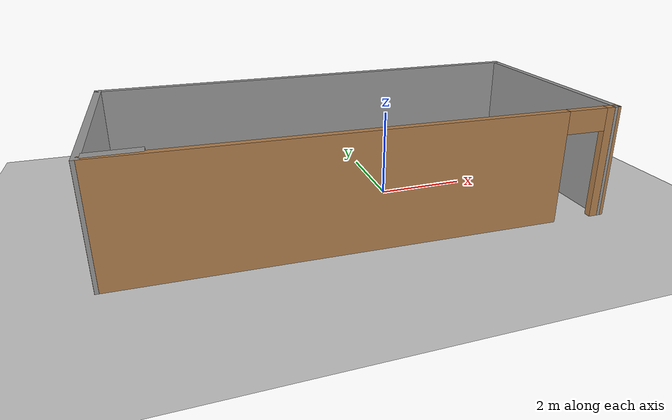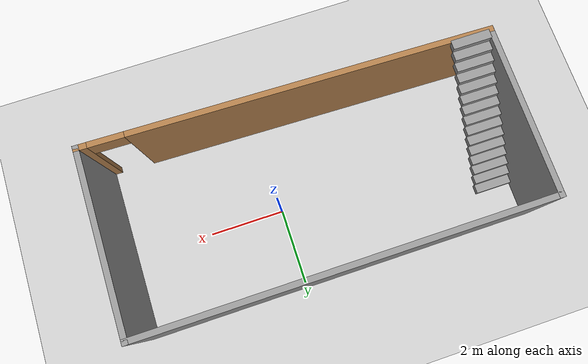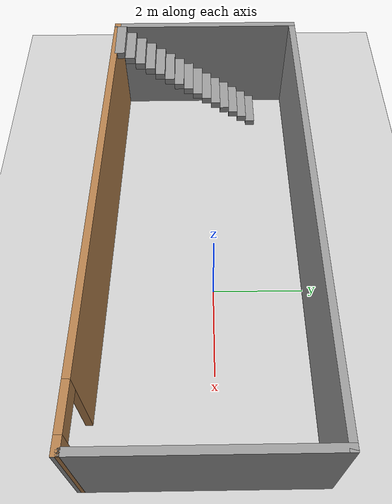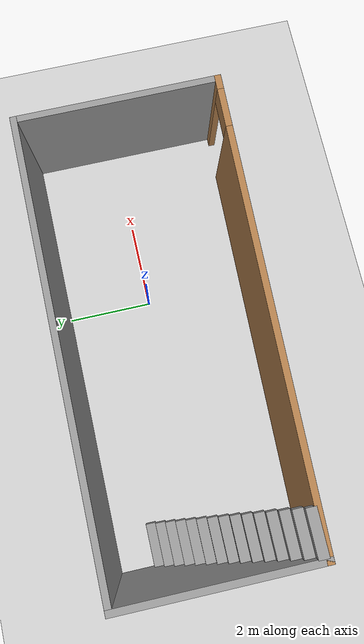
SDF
<sdf version="1.7">
 <world name="default">
  <model name="ground_plane">
   <static>1</static>
   <link name="link">
    <collision name="collision">
     <geometry><plane><normal>0 0 1</normal><size>100 100</size></plane></geometry>
     <surface>
      <contact><collide_bitmask>65535</collide_bitmask></contact>
      <friction><ode><mu>100</mu><mu2>50</mu2></ode></friction>
     </surface>
    </collision>
    <visual name="visual">
     <cast_shadows>0</cast_shadows>
     <geometry><plane><normal>0 0 1</normal><size>100 100</size></plane></geometry>
     <material>
      <script><uri>file://media/materials/scripts/gazebo.material</uri><name>Gazebo/Grey</name></script>
     </material>
    </visual>
   </link>
  </model>
  <light name="sun" type="directional">
   <pose>0 0 10 0 -0 0</pose>
   <diffuse>0.8 0.8 0.8 1</diffuse>
   <specular>0.2 0.2 0.2 1</specular>
   <attenuation>
    <range>1000</range>
    <constant>0.9</constant>
    <linear>0.01</linear>
    <quadratic>0.001</quadratic>
   </attenuation>
   <direction>-0.5 0.1 -0.9</direction>
   <spot><inner_angle>0</inner_angle><outer_angle>0</outer_angle><falloff>0</falloff></spot>
  </light>
  <scene><shadows>0</shadows><ambient>0.4 0.4 0.4 1</ambient><background>0.7 0.7 0.7 1</background></scene>
  <physics type="ode">
   <real_time_update_rate>1000</real_time_update_rate>
   <max_step_size>0.001</max_step_size>
   <real_time_factor>1</real_time_factor>
   <ode>
    <solver>
     <type>quick</type>
     <iters>150</iters>
     <precon_iters>0</precon_iters>
     <sor>1.4</sor>
     <use_dynamic_moi_rescaling>1</use_dynamic_moi_rescaling>
    </solver>
    <constraints>
     <cfm>1e-05</cfm>
     <erp>0.2</erp>
     <contact_max_correcting_vel>2000</contact_max_correcting_vel>
     <contact_surface_layer>0.01</contact_surface_layer>
    </constraints>
   </ode>
  </physics>
  <gravity>0 0 -9.8</gravity>
  <magnetic_field>6e-06 2.3e-05 -4.2e-05</magnetic_field>
  <atmosphere type="adiabatic"/>
  <audio><device>default</device></audio>
  <spherical_coordinates>
   <surface_model>EARTH_WGS84</surface_model>
   <latitude_deg>0</latitude_deg>
   <longitude_deg>0</longitude_deg>
   <elevation>0</elevation>
   <heading_deg>0</heading_deg>
  </spherical_coordinates>
  <model name="test2_house">
   <pose>-1.05605 -0.232103 0 0 -0 0</pose>
   <link name="Stairs_1">
    <visual name="Stairs_1_Visual_0">
     <pose>-4.62438 1.32787 0.083333 0 -0 0</pose>
     <geometry><box><size>1 0.233333 0.166667</size></box></geometry>
     <material>
      <script><uri>file://media/materials/scripts/gazebo.material</uri><name>Gazebo/Grey</name></script>
      <ambient>1 1 1 1</ambient>
     </material>
     <meta><layer>0</layer></meta>
    </visual>
    <collision name="Stairs_1_Collision_0">
     <geometry><box><size>1 0.233333 0.166667</size></box></geometry>
     <pose>-4.62438 1.32787 0.083333 0 -0 0</pose>
    </collision>
    <visual name="Stairs_1_Visual_1">
     <pose>-4.62438 1.09454 0.25 0 -0 0</pose>
     <geometry><box><size>1 0.233333 0.166667</size></box></geometry>
     <material>
      <script><uri>file://media/materials/scripts/gazebo.material</uri><name>Gazebo/Grey</name></script>
      <ambient>1 1 1 1</ambient>
     </material>
     <meta><layer>0</layer></meta>
    </visual>
    <collision name="Stairs_1_Collision_1">
     <geometry><box><size>1 0.233333 0.166667</size></box></geometry>
     <pose>-4.62438 1.09454 0.25 0 -0 0</pose>
    </collision>
    <visual name="Stairs_1_Visual_2">
     <pose>-4.62438 0.861204 0.416667 0 -0 0</pose>
     <geometry><box><size>1 0.233333 0.166667</size></box></geometry>
     <material>
      <script><uri>file://media/materials/scripts/gazebo.material</uri><name>Gazebo/Grey</name></script>
      <ambient>1 1 1 1</ambient>
     </material>
     <meta><layer>0</layer></meta>
    </visual>
    <collision name="Stairs_1_Collision_2">
     <geometry><box><size>1 0.233333 0.166667</size></box></geometry>
     <pose>-4.62438 0.861204 0.416667 0 -0 0</pose>
    </collision>
    <visual name="Stairs_1_Visual_3">
     <pose>-4.62438 0.627871 0.583333 0 -0 0</pose>
     <geometry><box><size>1 0.233333 0.166667</size></box></geometry>
     <material>
      <script><uri>file://media/materials/scripts/gazebo.material</uri><name>Gazebo/Grey</name></script>
      <ambient>1 1 1 1</ambient>
     </material>
     <meta><layer>0</layer></meta>
    </visual>
    <collision name="Stairs_1_Collision_3">
     <geometry><box><size>1 0.233333 0.166667</size></box></geometry>
     <pose>-4.62438 0.627871 0.583333 0 -0 0</pose>
    </collision>
    <visual name="Stairs_1_Visual_4">
     <pose>-4.62438 0.394538 0.75 0 -0 0</pose>
     <geometry><box><size>1 0.233333 0.166667</size></box></geometry>
     <material>
      <script><uri>file://media/materials/scripts/gazebo.material</uri><name>Gazebo/Grey</name></script>
      <ambient>1 1 1 1</ambient>
     </material>
     <meta><layer>0</layer></meta>
    </visual>
    <collision name="Stairs_1_Collision_4">
     <geometry><box><size>1 0.233333 0.166667</size></box></geometry>
     <pose>-4.62438 0.394538 0.75 0 -0 0</pose>
    </collision>
    <visual name="Stairs_1_Visual_5">
     <pose>-4.62438 0.161204 0.916667 0 -0 0</pose>
     <geometry><box><size>1 0.233333 0.166667</size></box></geometry>
     <material>
      <script><uri>file://media/materials/scripts/gazebo.material</uri><name>Gazebo/Grey</name></script>
      <ambient>1 1 1 1</ambient>
     </material>
     <meta><layer>0</layer></meta>
    </visual>
    <collision name="Stairs_1_Collision_5">
     <geometry><box><size>1 0.233333 0.166667</size></box></geometry>
     <pose>-4.62438 0.161204 0.916667 0 -0 0</pose>
    </collision>
    <visual name="Stairs_1_Visual_6">
     <pose>-4.62438 -0.072129 1.08333 0 -0 0</pose>
     <geometry><box><size>1 0.233333 0.166667</size></box></geometry>
     <material>
      <script><uri>file://media/materials/scripts/gazebo.material</uri><name>Gazebo/Grey</name></script>
      <ambient>1 1 1 1</ambient>
     </material>
     <meta><layer>0</layer></meta>
    </visual>
    <collision name="Stairs_1_Collision_6">
     <geometry><box><size>1 0.233333 0.166667</size></box></geometry>
     <pose>-4.62438 -0.072129 1.08333 0 -0 0</pose>
    </collision>
    <visual name="Stairs_1_Visual_7">
     <pose>-4.62438 -0.305462 1.25 0 -0 0</pose>
     <geometry><box><size>1 0.233333 0.166667</size></box></geometry>
     <material>
      <script><uri>file://media/materials/scripts/gazebo.material</uri><name>Gazebo/Grey</name></script>
      <ambient>1 1 1 1</ambient>
     </material>
     <meta><layer>0</layer></meta>
    </visual>
    <collision name="Stairs_1_Collision_7">
     <geometry><box><size>1 0.233333 0.166667</size></box></geometry>
     <pose>-4.62438 -0.305462 1.25 0 -0 0</pose>
    </collision>
    <visual name="Stairs_1_Visual_8">
     <pose>-4.62438 -0.538796 1.41667 0 -0 0</pose>
     <geometry><box><size>1 0.233333 0.166667</size></box></geometry>
     <material>
      <script><uri>file://media/materials/scripts/gazebo.material</uri><name>Gazebo/Grey</name></script>
      <ambient>1 1 1 1</ambient>
     </material>
     <meta><layer>0</layer></meta>
    </visual>
    <collision name="Stairs_1_Collision_8">
     <geometry><box><size>1 0.233333 0.166667</size></box></geometry>
     <pose>-4.62438 -0.538796 1.41667 0 -0 0</pose>
    </collision>
    <visual name="Stairs_1_Visual_9">
     <pose>-4.62438 -0.772129 1.58333 0 -0 0</pose>
     <geometry><box><size>1 0.233333 0.166667</size></box></geometry>
     <material>
      <script><uri>file://media/materials/scripts/gazebo.material</uri><name>Gazebo/Grey</name></script>
      <ambient>1 1 1 1</ambient>
     </material>
     <meta><layer>0</layer></meta>
    </visual>
    <collision name="Stairs_1_Collision_9">
     <geometry><box><size>1 0.233333 0.166667</size></box></geometry>
     <pose>-4.62438 -0.772129 1.58333 0 -0 0</pose>
    </collision>
    <visual name="Stairs_1_Visual_10">
     <pose>-4.62438 -1.00546 1.75 0 -0 0</pose>
     <geometry><box><size>1 0.233333 0.166667</size></box></geometry>
     <material>
      <script><uri>file://media/materials/scripts/gazebo.material</uri><name>Gazebo/Grey</name></script>
      <ambient>1 1 1 1</ambient>
     </material>
     <meta><layer>0</layer></meta>
    </visual>
    <collision name="Stairs_1_Collision_10">
     <geometry><box><size>1 0.233333 0.166667</size></box></geometry>
     <pose>-4.62438 -1.00546 1.75 0 -0 0</pose>
    </collision>
    <visual name="Stairs_1_Visual_11">
     <pose>-4.62438 -1.2388 1.91667 0 -0 0</pose>
     <geometry><box><size>1 0.233333 0.166667</size></box></geometry>
     <material>
      <script><uri>file://media/materials/scripts/gazebo.material</uri><name>Gazebo/Grey</name></script>
      <ambient>1 1 1 1</ambient>
     </material>
     <meta><layer>0</layer></meta>
    </visual>
    <collision name="Stairs_1_Collision_11">
     <geometry><box><size>1 0.233333 0.166667</size></box></geometry>
     <pose>-4.62438 -1.2388 1.91667 0 -0 0</pose>
    </collision>
    <visual name="Stairs_1_Visual_12">
     <pose>-4.62438 -1.47213 2.08333 0 -0 0</pose>
     <geometry><box><size>1 0.233333 0.166667</size></box></geometry>
     <material>
      <script><uri>file://media/materials/scripts/gazebo.material</uri><name>Gazebo/Grey</name></script>
      <ambient>1 1 1 1</ambient>
     </material>
     <meta><layer>0</layer></meta>
    </visual>
    <collision name="Stairs_1_Collision_12">
     <geometry><box><size>1 0.233333 0.166667</size></box></geometry>
     <pose>-4.62438 -1.47213 2.08333 0 -0 0</pose>
    </collision>
    <visual name="Stairs_1_Visual_13">
     <pose>-4.62438 -1.70546 2.25 0 -0 0</pose>
     <geometry><box><size>1 0.233333 0.166667</size></box></geometry>
     <material>
      <script><uri>file://media/materials/scripts/gazebo.material</uri><name>Gazebo/Grey</name></script>
      <ambient>1 1 1 1</ambient>
     </material>
     <meta><layer>0</layer></meta>
    </visual>
    <collision name="Stairs_1_Collision_13">
     <geometry><box><size>1 0.233333 0.166667</size></box></geometry>
     <pose>-4.62438 -1.70546 2.25 0 -0 0</pose>
    </collision>
    <visual name="Stairs_1_Visual_14">
     <pose>-4.62438 -1.9388 2.41667 0 -0 0</pose>
     <geometry><box><size>1 0.233333 0.166667</size></box></geometry>
     <material>
      <script><uri>file://media/materials/scripts/gazebo.material</uri><name>Gazebo/Grey</name></script>
      <ambient>1 1 1 1</ambient>
     </material>
     <meta><layer>0</layer></meta>
    </visual>
    <collision name="Stairs_1_Collision_14">
     <geometry><box><size>1 0.233333 0.166667</size></box></geometry>
     <pose>-4.62438 -1.9388 2.41667 0 -0 0</pose>
    </collision>
   </link>
   <link name="Wall_0">
    <collision name="Wall_0_Collision">
     <geometry><box><size>4.5 0.15 2.5</size></box></geometry>
     <pose>0 0 1.25 0 -0 0</pose>
    </collision>
    <visual name="Wall_0_Visual">
     <pose>0 0 1.25 0 -0 0</pose>
     <geometry><box><size>4.5 0.15 2.5</size></box></geometry>
     <material>
      <script><uri>file://media/materials/scripts/gazebo.material</uri><name>Gazebo/Grey</name></script>
      <ambient>1 1 1 1</ambient>
     </material>
     <meta><layer>0</layer></meta>
    </visual>
    <pose>-5.175 0.125895 0 0 -0 1.5708</pose>
   </link>
   <link name="Wall_1">
    <collision name="Wall_1_Collision">
     <geometry><box><size>10.5 0.15 2.5</size></box></geometry>
     <pose>0 0 1.25 0 -0 0</pose>
    </collision>
    <visual name="Wall_1_Visual">
     <pose>0 0 1.25 0 -0 0</pose>
     <geometry><box><size>10.5 0.15 2.5</size></box></geometry>
     <material>
      <script><uri>file://media/materials/scripts/gazebo.material</uri><name>Gazebo/Grey</name></script>
      <ambient>1 1 1 1</ambient>
     </material>
     <meta><layer>0</layer></meta>
    </visual>
    <pose>-0 2.3009 0 0 -0 0</pose>
   </link>
   <link name="Wall_2">
    <collision name="Wall_2_Collision">
     <geometry><box><size>4.75 0.15 2.5</size></box></geometry>
     <pose>0 0 1.25 0 -0 0</pose>
    </collision>
    <visual name="Wall_2_Visual">
     <pose>0 0 1.25 0 -0 0</pose>
     <geometry><box><size>4.75 0.15 2.5</size></box></geometry>
     <material>
      <script><uri>file://media/materials/scripts/gazebo.material</uri><name>Gazebo/Grey</name></script>
      <ambient>1 1 1 1</ambient>
     </material>
     <meta><layer>0</layer></meta>
    </visual>
    <pose>5.175 0.000895 0 0 -0 -1.5708</pose>
   </link>
   <link name="Wall_3">
    <pose>-0 -2.1741 0 0 -0 3.11744</pose>
    <visual name="Wall_3_Visual_0">
     <pose>-5.08275 0 1.25 0 -0 0</pose>
     <geometry><box><size>0.33752 0.15 2.5</size></box></geometry>
     <material>
      <script><uri>file://media/materials/scripts/gazebo.material</uri><name>Gazebo/Wood</name></script>
      <ambient>1 1 1 1</ambient>
     </material>
     <meta><layer>0</layer></meta>
    </visual>
    <collision name="Wall_3_Collision_0">
     <geometry><box><size>0.33752 0.15 2.5</size></box></geometry>
     <pose>-5.08275 0 1.25 0 -0 0</pose>
    </collision>
    <visual name="Wall_3_Visual_1">
     <pose>0.61876 0 1.25 0 -0 0</pose>
     <geometry><box><size>9.2655 0.15 2.5</size></box></geometry>
     <material>
      <script><uri>file://media/materials/scripts/gazebo.material</uri><name>Gazebo/Wood</name></script>
      <ambient>1 1 1 1</ambient>
     </material>
     <meta><layer>0</layer></meta>
    </visual>
    <collision name="Wall_3_Collision_1">
     <geometry><box><size>9.2655 0.15 2.5</size></box></geometry>
     <pose>0.61876 0 1.25 0 -0 0</pose>
    </collision>
    <visual name="Wall_3_Visual_2">
     <pose>-4.46399 0 2.25 0 -0 0</pose>
     <geometry><box><size>0.9 0.15 0.5</size></box></geometry>
     <material>
      <script><uri>file://media/materials/scripts/gazebo.material</uri><name>Gazebo/Wood</name></script>
      <ambient>1 1 1 1</ambient>
     </material>
     <meta><layer>0</layer></meta>
    </visual>
    <collision name="Wall_3_Collision_2">
     <geometry><box><size>0.9 0.15 0.5</size></box></geometry>
     <pose>-4.46399 0 2.25 0 -0 0</pose>
    </collision>
   </link>
   <static>1</static>
  </model>
 </world>
</sdf>
